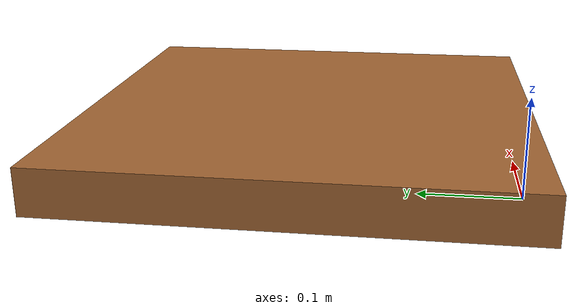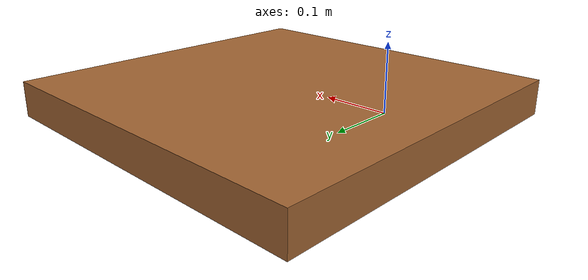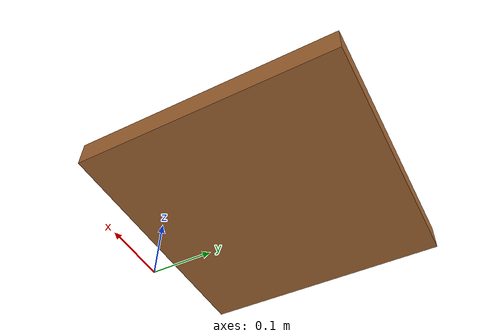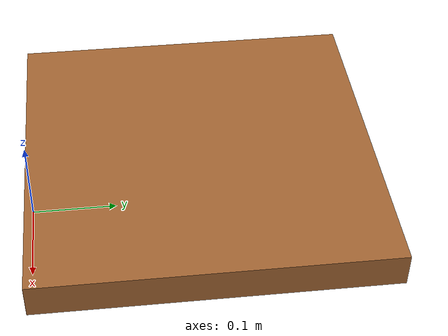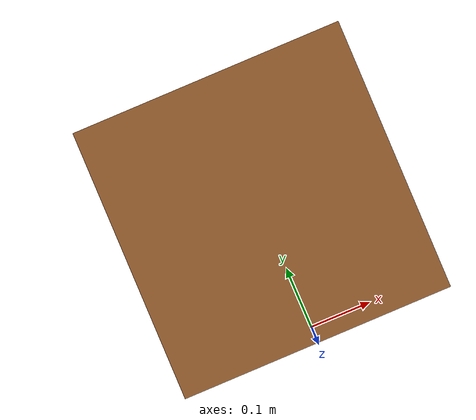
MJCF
<mujoco model="auxiliary_objects">

    <asset>
        <material name="table_mat" rgba="0.64 0.4 0.2 1"/>
    </asset>

    <include file="models/Threshold_Bead_Cereal_Bowl_White/asset.xml"/>

    <worldbody>

        <body name="table" pos="0 0.2 0.05">
            <geom type="box" size="0.2 0.2 0.02" pos="0 0 0.02" material="table_mat" solimp="0.99 0.99 0.01" solref="0.002 1"/>
        </body>

    </worldbody>

</mujoco>

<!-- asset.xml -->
<mujocoinclude>
  <asset>
    <texture type="2d" name="texture" file="texture.png"/>
    <material name="material_0" texture="texture" specular="0.5" shininess="0.5"/>
    <mesh name="model" file="model.obj"/>
    <mesh name="model_collision_0" file="model_collision_0.obj"/>
    <mesh name="model_collision_1" file="model_collision_1.obj"/>
    <mesh name="model_collision_2" file="model_collision_2.obj"/>
    <mesh name="model_collision_3" file="model_collision_3.obj"/>
    <mesh name="model_collision_4" file="model_collision_4.obj"/>
    <mesh name="model_collision_5" file="model_collision_5.obj"/>
    <mesh name="model_collision_6" file="model_collision_6.obj"/>
    <mesh name="model_collision_7" file="model_collision_7.obj"/>
    <mesh name="model_collision_8" file="model_collision_8.obj"/>
    <mesh name="model_collision_9" file="model_collision_9.obj"/>
    <mesh name="model_collision_10" file="model_collision_10.obj"/>
    <mesh name="model_collision_11" file="model_collision_11.obj"/>
    <mesh name="model_collision_12" file="model_collision_12.obj"/>
    <mesh name="model_collision_13" file="model_collision_13.obj"/>
    <mesh name="model_collision_14" file="model_collision_14.obj"/>
    <mesh name="model_collision_15" file="model_collision_15.obj"/>
    <mesh name="model_collision_16" file="model_collision_16.obj"/>
    <mesh name="model_collision_17" file="model_collision_17.obj"/>
    <mesh name="model_collision_18" file="model_collision_18.obj"/>
    <mesh name="model_collision_19" file="model_collision_19.obj"/>
    <mesh name="model_collision_20" file="model_collision_20.obj"/>
    <mesh name="model_collision_21" file="model_collision_21.obj"/>
    <mesh name="model_collision_22" file="model_collision_22.obj"/>
    <mesh name="model_collision_23" file="model_collision_23.obj"/>
    <mesh name="model_collision_24" file="model_collision_24.obj"/>
    <mesh name="model_collision_25" file="model_collision_25.obj"/>
    <mesh name="model_collision_26" file="model_collision_26.obj"/>
    <mesh name="model_collision_27" file="model_collision_27.obj"/>
    <mesh name="model_collision_28" file="model_collision_28.obj"/>
    <mesh name="model_collision_29" file="model_collision_29.obj"/>
    <mesh name="model_collision_30" file="model_collision_30.obj"/>
    <mesh name="model_collision_31" file="model_collision_31.obj"/>
  </asset>
</mujocoinclude>
